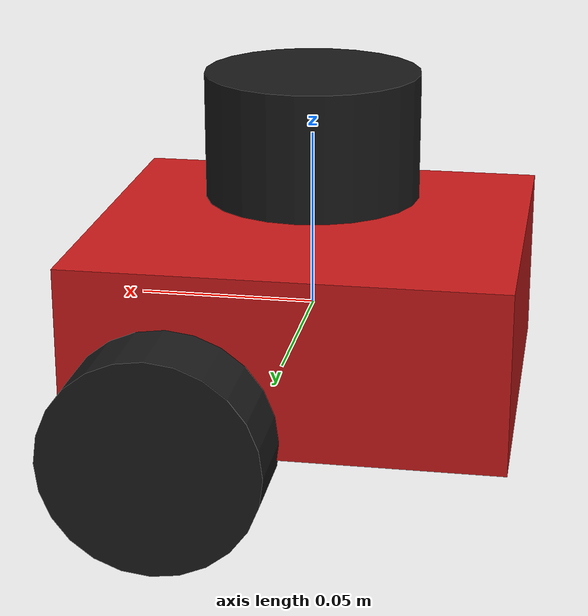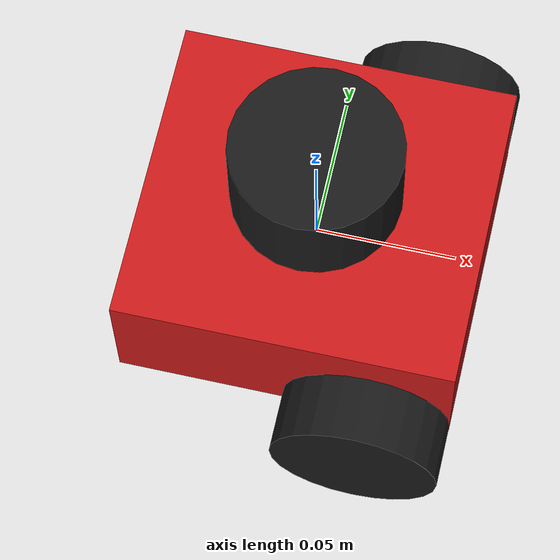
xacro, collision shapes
<?xml version="1.0"?>
<robot xmlns:xacro="http://www.ros.org/wiki/xacro" name="my_rover">

    <!-- INERTIA MACROS (Baked in so you don't need extra files)    -->
    <xacro:macro name="box_inertia" params="m w h d">
        <inertial>
            <origin xyz="0 0 0" rpy="0 0 0"/>
            <mass value="${m}"/>
            <inertia ixx="${(m/12) * (h*h + d*d)}" ixy="0.0" ixz="0.0"
                     iyy="${(m/12) * (w*w + d*d)}" iyz="0.0"
                     izz="${(m/12) * (w*w + h*h)}"/>
        </inertial>
    </xacro:macro>

    <xacro:macro name="cylinder_inertia" params="m r h">
        <inertial>
            <origin xyz="0 0 0" rpy="0 0 0"/>
            <mass value="${m}"/>
            <inertia ixx="${(m/12) * (3*r*r + h*h)}" ixy="0" ixz="0"
                     iyy="${(m/12) * (3*r*r + h*h)}" iyz="0"
                     izz="${(m/2) * (r*r)}"/>
        </inertial>
    </xacro:macro>

    <xacro:macro name="sphere_inertia" params="m r">
        <inertial>
            <origin xyz="0 0 0" rpy="0 0 0"/>
            <mass value="${m}"/>
            <inertia ixx="${(2/5) * m * (r*r)}" ixy="0.0" ixz="0.0"
                     iyy="${(2/5) * m * (r*r)}" iyz="0.0"
                     izz="${(2/5) * m * (r*r)}"/>
        </inertial>
    </xacro:macro>

    <!-- ROBOT GEOMETRY & JOINTS                                    -->

    <!-- BASE LINK (Chassis) -->
    <link name="base_link">
        <visual>
            <origin xyz="0 0 0" rpy="0 0 0"/>
            <geometry>
                <mesh filename="file://$(find final_assemble_rover_description)/meshes/chasis.STL" scale="1 1 1"/>
            </geometry>
            <material name="red">
                <color rgba="0.8 0.1 0.1 1.0"/>
            </material>
        </visual>
        <collision>
            <origin xyz="0 0 0" rpy="0 0 0"/>
            <geometry>
                <box size="0.12 0.11 0.05"/>
            </geometry>
        </collision>
        <xacro:box_inertia m="1.2" w="0.12" h="0.11" d="0.05"/>
    </link>

    <!-- LEFT WHEEL -->
    <joint name="left_wheel_joint" type="continuous">
        <parent link="base_link"/>
        <child link="left_wheel"/>
        <origin xyz="0.03 0.065 -0.02" rpy="-1.5708 0 0"/>
        <axis xyz="0 0 1"/>
    </joint>

    <link name="left_wheel">
        <visual>
            <origin xyz="0 0 0" rpy="0 0 0"/>
            <geometry>
                <mesh filename="file://$(find final_assemble_rover_description)/meshes/wheel_link.STL" scale="1 1 1"/>
            </geometry>
            <material name="black">
                <color rgba="0.1 0.1 0.1 1.0"/>
            </material>
        </visual>
        <collision>
            <origin xyz="0 0 0" rpy="0 0 0"/>
            <geometry>
                <cylinder radius="0.03" length="0.025"/>
            </geometry>
        </collision>
        <xacro:cylinder_inertia m="0.25" r="0.03" h="0.025"/>
    </link>

    <!-- RIGHT WHEEL -->
    <joint name="right_wheel_joint" type="continuous">
        <parent link="base_link"/>
        <child link="right_wheel"/>
        <origin xyz="0.03 -0.065 -0.02" rpy="1.5708 0 0"/>
        <axis xyz="0 0 1"/>
    </joint>

    <link name="right_wheel">
        <visual>
            <origin xyz="0 0 0" rpy="0 0 0"/>
            <geometry>
                <mesh filename="file://$(find final_assemble_rover_description)/meshes/wheel_link.STL" scale="1 1 1"/>
            </geometry>
            <material name="black"/>
        </visual>
        <collision>
            <origin xyz="0 0 0" rpy="0 0 0"/>
            <geometry>
                <cylinder radius="0.03" length="0.025"/>
            </geometry>
        </collision>
        <xacro:cylinder_inertia m="0.25" r="0.03" h="0.025"/>
    </link>

    <!-- CASTOR BALL -->
    <joint name="castor_joint" type="fixed">
        <parent link="base_link"/>
        <child link="castor_link"/>
        <origin xyz="-0.04 0 -0.03" rpy="0 0 0"/>
    </joint>

    <link name="castor_link">
        <visual>
            <origin xyz="0 0 0" rpy="0 0 0"/>
            <geometry>
                <mesh filename="file://$(find final_assemble_rover_description)/meshes/castor_ball.STL" scale="1 1 1"/>
            </geometry>
            <material name="silver">
                <color rgba="0.75 0.75 0.75 1.0"/>
            </material>
        </visual>
        <collision>
            <origin xyz="0 0 0" rpy="0 0 0"/>
            <geometry>
                <sphere radius="0.015"/>
            </geometry>
        </collision>
        <xacro:sphere_inertia m="0.1" r="0.015"/>
    </link>

    <!-- LIDAR LINK -->
    <joint name="lidar_joint" type="fixed">
        <parent link="base_link"/>
        <child link="lidar_link"/>
        <origin xyz="0 0 0.05" rpy="0 0 0"/>
    </joint>

    <link name="lidar_link">
        <visual>
            <origin xyz="0 0 0" rpy="0 0 0"/>
            <geometry>
                <mesh filename="file://$(find final_assemble_rover_description)/meshes/laser_link.STL" scale="1 1 1"/>
            </geometry>
            <material name="black"/>
        </visual>
        <collision>
            <origin xyz="0 0 0" rpy="0 0 0"/>
            <geometry>
                <cylinder radius="0.03" length="0.035"/>
            </geometry>
        </collision>
        <xacro:cylinder_inertia m="0.15" r="0.03" h="0.035"/>
    </link>

    <!-- GAZEBO COLOR FIXES -->
    <gazebo reference="base_link"><material>Gazebo/Red</material></gazebo>
    <gazebo reference="left_wheel"><material>Gazebo/Black</material></gazebo>
    <gazebo reference="right_wheel"><material>Gazebo/Black</material></gazebo>
    <gazebo reference="castor_link"><material>Gazebo/Silver</material></gazebo>
    <gazebo reference="lidar_link"><material>Gazebo/DarkGrey</material></gazebo>

</robot>
